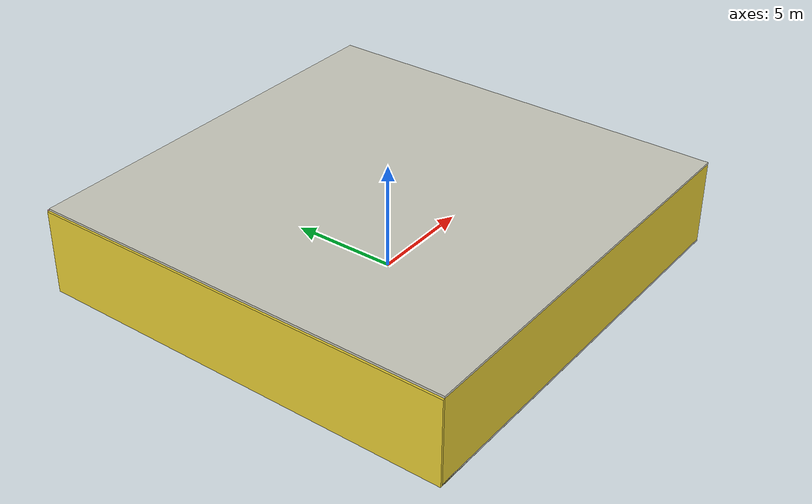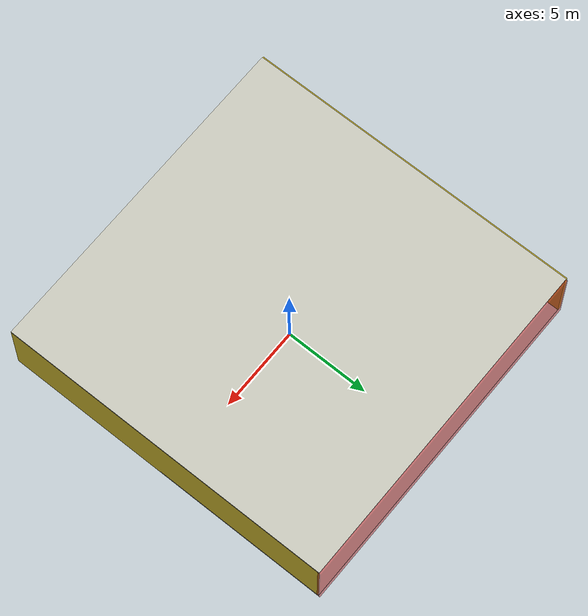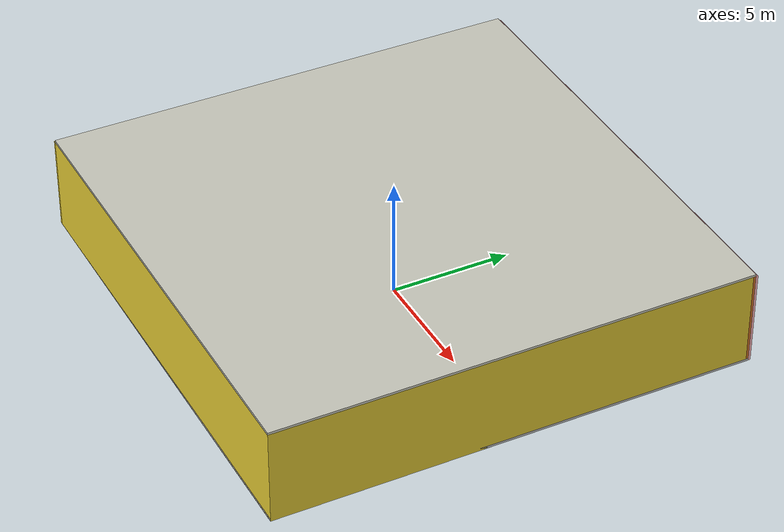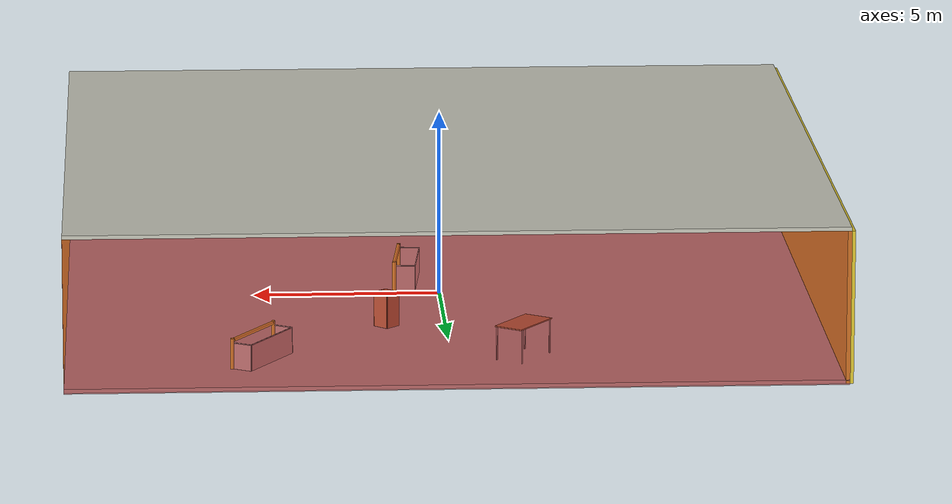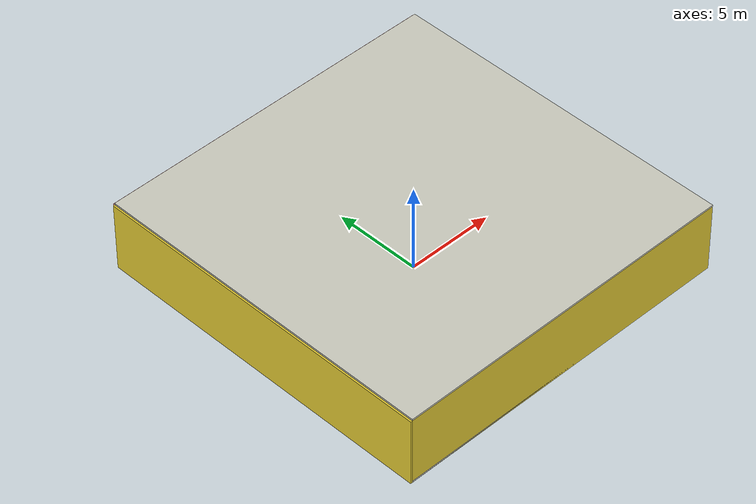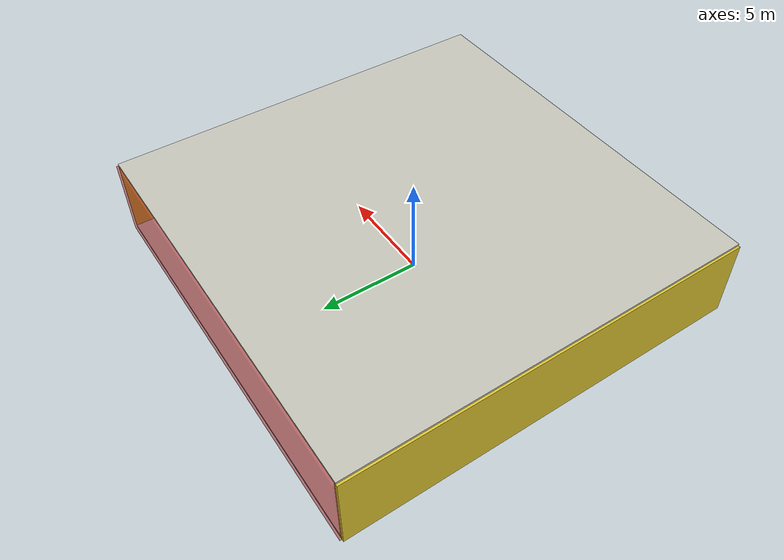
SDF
<sdf version="1.4">
 <world name="default">
  <physics type="ode">
   <max_step_size>0.001</max_step_size>
   <real_time_factor>1</real_time_factor>
   <real_time_update_rate>1000</real_time_update_rate>
   <gravity>0 0 -9.8</gravity>
  </physics>
  <scene><ambient>0.4 0.4 0.4 1</ambient><background>0.7 0.7 0.7 1</background><shadows>1</shadows></scene>
  <model name="Surrounding">
   <static>1</static>
   <link name="Ceiling">
    <collision name="Ceiling_Collision"><geometry><box><size>20 20 0.1</size></box></geometry></collision>
    <visual name="Ceiling_Visual">
     <geometry><box><size>20 20 0.1</size></box></geometry>
     <material>
      <script><uri>file://media/materials/scripts/gazebo.material</uri><name>Gazebo/PaintedWall</name></script>
     </material>
    </visual>
    <pose>0 0 4.05 0 0 0</pose>
   </link>
   <link name="Wall_South">
    <collision name="Wall_South_Collision">
     <geometry><box><size>20 0 4</size></box></geometry>
     <pose>0 0 2 0 -0 0</pose>
    </collision>
    <visual name="Wall_South_Visual">
     <pose>0 0 2 0 -0 0</pose>
     <geometry><box><size>20 0 4</size></box></geometry>
     <material>
      <script><uri>file://media/materials/scripts/gazebo.material</uri><name>Gazebo/ZincYellow</name></script>
     </material>
    </visual>
    <velocity_decay><linear>0</linear><angular>0</angular></velocity_decay>
    <pose>0 -10 0 0 -0 0</pose>
   </link>
   <link name="Wall_East">
    <collision name="Wall_21_Collision">
     <geometry><box><size>20 0 4</size></box></geometry>
     <pose>0 0 2 0 -0 0</pose>
    </collision>
    <visual name="Wall_21_Visual">
     <pose>0 0 2 0 -0 0</pose>
     <geometry><box><size>20 0 4</size></box></geometry>
     <material>
      <script><uri>file://media/materials/scripts/gazebo.material</uri><name>Gazebo/ZincYellow</name></script>
     </material>
    </visual>
    <velocity_decay><linear>0</linear><angular>0</angular></velocity_decay>
    <pose>10 0 0 0 -0 1.5708</pose>
   </link>
   <link name="Wall_North">
    <collision name="Wall_22_Collision">
     <geometry><box><size>20 0.2 4</size></box></geometry>
     <pose>0 0 2 0 -0 0</pose>
    </collision>
    <visual name="Wall_22_Visual">
     <pose>0 0 2 0 -0 0</pose>
     <geometry><box><size>20 0.2 4</size></box></geometry>
     <material>
      <script><uri>file://media/materials/scripts/gazebo.material</uri><name>Gazebo/RedTransparent</name></script>
     </material>
    </visual>
    <velocity_decay><linear>0</linear><angular>0</angular></velocity_decay>
    <pose>0 10 0 0 -0 0</pose>
   </link>
   <link name="Wall_West">
    <collision name="Wall_23_Collision">
     <geometry><box><size>20 0.2 4</size></box></geometry>
     <pose>0 0 2 0 -0 0</pose>
    </collision>
    <visual name="Wall_23_Visual">
     <pose>0 0 2 0 -0 0</pose>
     <geometry><box><size>20 0.2 4</size></box></geometry>
     <material>
      <script><uri>file://media/materials/scripts/gazebo.material</uri><name>Gazebo/ZincYellow</name></script>
     </material>
    </visual>
    <velocity_decay><linear>0</linear><angular>0</angular></velocity_decay>
    <pose>-10 0 0 0 0 -1.5708</pose>
   </link>
   <link name="Ground_link">
    <collision name="collision">
     <pose>0 0 .05 0 -0 0</pose>
     <geometry><box><size>20 20 0.1</size></box></geometry>
    </collision>
    <visual name="visual">
     <pose>0 0 .05 0 -0 0</pose>
     <geometry><box><size>20 20 0.1</size></box></geometry>
     <material>
      <script><uri>file://media/materials/scripts/gazebo.material</uri><name>Gazebo/PioneerBody</name></script>
     </material>
    </visual>
   </link>
   <static>1</static>
  </model>
  <spherical_coordinates>
   <surface_model>EARTH_WGS84</surface_model>
   <latitude_deg>0</latitude_deg>
   <longitude_deg>0</longitude_deg>
   <elevation>0</elevation>
   <heading_deg>0</heading_deg>
  </spherical_coordinates>
  <light name="lightball_0" type="diffuse">
   <diffuse>0.8 0.8 0.8 1</diffuse>
   <specular>0.2 0.2 0.2 1</specular>
   <attenuation>
    <range>100</range>
    <constant>0.7</constant>
    <linear>0.01</linear>
    <quadratic>0.001</quadratic>
   </attenuation>
   <direction>-0.5 0.1 -0.9</direction>
   <pose>-1.38589244207 -5.29075070008 0.664841726637 0 0 0</pose>
  </light>
  <light name="lightball_1" type="diffuse">
   <diffuse>0.8 0.8 0.8 1</diffuse>
   <specular>0.2 0.2 0.2 1</specular>
   <attenuation>
    <range>100</range>
    <constant>0.7</constant>
    <linear>0.01</linear>
    <quadratic>0.001</quadratic>
   </attenuation>
   <direction>-0.5 0.1 -0.9</direction>
   <pose>4.38564549392 -4.90949134511 3.53991983223 0 0 0</pose>
  </light>
  <light name="lightball_2" type="diffuse">
   <diffuse>0.8 0.8 0.8 1</diffuse>
   <specular>0.2 0.2 0.2 1</specular>
   <attenuation>
    <range>100</range>
    <constant>0.7</constant>
    <linear>0.01</linear>
    <quadratic>0.001</quadratic>
   </attenuation>
   <direction>-0.5 0.1 -0.9</direction>
   <pose>3.90767264208 -0.85346672058 1.15426356735 0 0 0</pose>
  </light>
  <light name="lightball_3" type="diffuse">
   <diffuse>0.8 0.8 0.8 1</diffuse>
   <specular>0.2 0.2 0.2 1</specular>
   <attenuation>
    <range>100</range>
    <constant>0.7</constant>
    <linear>0.01</linear>
    <quadratic>0.001</quadratic>
   </attenuation>
   <direction>-0.5 0.1 -0.9</direction>
   <pose>-4.78036632726 -8.43159622101 0.569147828802 0 0 0</pose>
  </light>
  <light name="lightball_4" type="diffuse">
   <diffuse>0.8 0.8 0.8 1</diffuse>
   <specular>0.2 0.2 0.2 1</specular>
   <attenuation>
    <range>100</range>
    <constant>0.7</constant>
    <linear>0.01</linear>
    <quadratic>0.001</quadratic>
   </attenuation>
   <direction>-0.5 0.1 -0.9</direction>
   <pose>-0.567708059381 1.40517964794 0.937989791228 0 0 0</pose>
  </light>
  <light name="lightball_5" type="diffuse">
   <diffuse>0.8 0.8 0.8 1</diffuse>
   <specular>0.2 0.2 0.2 1</specular>
   <attenuation>
    <range>100</range>
    <constant>0.7</constant>
    <linear>0.01</linear>
    <quadratic>0.001</quadratic>
   </attenuation>
   <direction>-0.5 0.1 -0.9</direction>
   <pose>-7.04474301703 5.41518038731 1.95841465524 0 0 0</pose>
  </light>
  <light name="lightball_6" type="diffuse">
   <diffuse>0.8 0.8 0.8 1</diffuse>
   <specular>0.2 0.2 0.2 1</specular>
   <attenuation>
    <range>100</range>
    <constant>0.7</constant>
    <linear>0.01</linear>
    <quadratic>0.001</quadratic>
   </attenuation>
   <direction>-0.5 0.1 -0.9</direction>
   <pose>-1.10811263757 -4.9346716581 1.41076978793 0 0 0</pose>
  </light>
  <light name="lightball_7" type="diffuse">
   <diffuse>0.8 0.8 0.8 1</diffuse>
   <specular>0.2 0.2 0.2 1</specular>
   <attenuation>
    <range>100</range>
    <constant>0.7</constant>
    <linear>0.01</linear>
    <quadratic>0.001</quadratic>
   </attenuation>
   <direction>-0.5 0.1 -0.9</direction>
   <pose>-0.784934315487 -3.70899764094 3.83954089165 0 0 0</pose>
  </light>
  <light name="lightball_8" type="diffuse">
   <diffuse>0.8 0.8 0.8 1</diffuse>
   <specular>0.2 0.2 0.2 1</specular>
   <attenuation>
    <range>100</range>
    <constant>0.7</constant>
    <linear>0.01</linear>
    <quadratic>0.001</quadratic>
   </attenuation>
   <direction>-0.5 0.1 -0.9</direction>
   <pose>-6.52987294918 7.17928279857 1.25844552434 0 0 0</pose>
  </light>
  <include><uri>model://table</uri><pose>-8.18354452238 -7.33303692113 0 0 0 0.930008719294</pose></include>
  <include><uri>model://table</uri><pose>-4.33412715104 -7.44899159033 0 0 0 1.01052699636</pose></include>
  <include><uri>model://table</uri><pose>-1.83709795724 7.20554782159 0 0 0 0.955643916108</pose></include>
  <include>
   <uri>model://robocup_3Dsim_goal</uri>
   <pose>1.10992952682 -1.01281718341 0 0 0 3.0439807574</pose>
  </include>
  <include><uri>model://cabinet</uri><pose>1.56877067168 3.83848809488 0 0 0 0.794949596728</pose></include>
  <include>
   <uri>model://robocup_3Dsim_goal</uri>
   <pose>5.1521040134 7.22488789158 0 0 0 2.59662513025</pose>
  </include>
 </world>
</sdf>

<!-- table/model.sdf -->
<sdf version="1.5">
  <model name="table">
    <static>true</static>
    <link name="link">
      <collision name="surface">
        <pose>0 0 1.0 0 0 0</pose>
        <geometry>
          <box>
            <size>1.5 0.8 0.03</size>
          </box>
        </geometry>
        <surface>
          <friction>
            <ode>
              <mu>0.6</mu>
              <mu2>0.6</mu2>
            </ode>
          </friction>
        </surface>
      </collision>
      <visual name="visual1">
        <pose>0 0 1.0 0 0 0</pose>
        <geometry>
          <box>
            <size>1.5 0.8 0.03</size>
          </box>
        </geometry>
        <material>
          <script>
            <uri>model://media/materials/scripts/gazebo.material</uri>
            <name>Gazebo/Wood</name>
          </script>
        </material>
      </visual>
      <collision name="front_left_leg">
        <pose>0.68 0.38 0.5 0 0 0</pose>
        <geometry>
          <cylinder>
            <radius>0.02</radius>
            <length>1.0</length>
          </cylinder>
        </geometry>
      </collision>
      <visual name="front_left_leg">
        <pose>0.68 0.38 0.5 0 0 0</pose>
        <geometry>
          <cylinder>
            <radius>0.02</radius>
            <length>1.0</length>
          </cylinder>
        </geometry>
        <material>
          <script>
            <uri>model://media/materials/scripts/gazebo.material</uri>
            <name>Gazebo/Grey</name>
          </script>
        </material>
      </visual>
      <collision name="front_right_leg">
        <pose>0.68 -0.38 0.5 0 0 0</pose>
        <geometry>
          <cylinder>
            <radius>0.02</radius>
            <length>1.0</length>
          </cylinder>
        </geometry>
      </collision>
      <visual name="front_right_leg">
        <pose>0.68 -0.38 0.5 0 0 0</pose>
        <geometry>
          <cylinder>
            <radius>0.02</radius>
            <length>1.0</length>
          </cylinder>
        </geometry>
        <material>
          <script>
            <uri>model://media/materials/scripts/gazebo.material</uri>
            <name>Gazebo/Grey</name>
          </script>
        </material>
      </visual>
      <collision name="back_right_leg">
        <pose>-0.68 -0.38 0.5 0 0 0</pose>
        <geometry>
          <cylinder>
            <radius>0.02</radius>
            <length>1.0</length>
          </cylinder>
        </geometry>
      </collision>
      <visual name="back_right_leg">
        <pose>-0.68 -0.38 0.5 0 0 0</pose>
        <geometry>
          <cylinder>
            <radius>0.02</radius>
            <length>1.0</length>
          </cylinder>
        </geometry>
        <material>
          <script>
            <uri>model://media/materials/scripts/gazebo.material</uri>
            <name>Gazebo/Grey</name>
          </script>
        </material>
      </visual>
      <collision name="back_left_leg">
        <pose>-0.68 0.38 0.5 0 0 0</pose>
        <geometry>
          <cylinder>
            <radius>0.02</radius>
            <length>1.0</length>
          </cylinder>
        </geometry>
      </collision>
      <visual name="back_left_leg">
        <pose>-0.68 0.38 0.5 0 0 0</pose>
        <geometry>
          <cylinder>
            <radius>0.02</radius>
            <length>1.0</length>
          </cylinder>
        </geometry>
        <material>
          <script>
            <uri>model://media/materials/scripts/gazebo.material</uri>
            <name>Gazebo/Grey</name>
          </script>
        </material>
      </visual>
    </link>
  </model>
</sdf>

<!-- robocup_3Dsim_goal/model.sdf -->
<sdf version="1.5">
  <model name="robocup_3d_goal">
    <static>true</static>
    <link name="left_post">
      <pose>0 1.05 0.45 0 0 0</pose>
      <collision name="collision">
        <geometry>
          <cylinder>
            <radius>0.05</radius>
            <length>0.9</length>
          </cylinder>
        </geometry>
      </collision>
      <visual name="visual">
        <geometry>
          <cylinder>
            <radius>0.05</radius>
            <length>0.9</length>
          </cylinder>
        </geometry>
        <material>
          <script>
            <uri>file://media/materials/scripts/gazebo.material</uri>
            <name>Gazebo/ZincYellow</name>
          </script>
        </material>
      </visual>
    </link>
    <link name="left_support_horiz_lower">
      <pose>0.30 1.05 0.01 0 0 0</pose>
      <collision name="collision">
        <geometry>
          <box>
            <size>0.50 0.02 0.02</size>
          </box>
        </geometry>
      </collision>
      <visual name="visual">
        <geometry>
          <box>
            <size>0.50 0.02 0.02</size>
          </box>
        </geometry>
        <material>
          <script>
            <uri>file://media/materials/scripts/gazebo.material</uri>
            <name>Gazebo/White</name>
          </script>
        </material>
      </visual>
    </link>
    <link name="left_support_horiz_upper">
      <pose>0.30 1.05 0.79 0 0 0</pose>
      <collision name="collision">
        <geometry>
          <box>
            <size>0.50 0.02 0.02</size>
          </box>
        </geometry>
      </collision>
      <visual name="visual">
        <geometry>
          <box>
            <size>0.50 0.02 0.02</size>
          </box>
        </geometry>
        <material>
          <script>
            <uri>file://media/materials/scripts/gazebo.material</uri>
            <name>Gazebo/White</name>
          </script>
        </material>
      </visual>
    </link>
    <link name="left_support_vertical">
      <pose>0.56 1.05 0.4 0 1.5708 0</pose>
      <collision name="collision">
        <geometry>
          <box>
            <size>0.80 0.02 0.02</size>
          </box>
        </geometry>
      </collision>
      <visual name="visual">
        <geometry>
          <box>
            <size>0.80 0.02 0.02</size>
          </box>
        </geometry>
        <material>
          <script>
            <uri>file://media/materials/scripts/gazebo.material</uri>
            <name>Gazebo/White</name>
          </script>
        </material>
      </visual>
    </link>
    <link name="right_support_horiz_lower">
      <pose>0.30 -1.05 0.01 0 0 0</pose>
      <collision name="collision">
        <geometry>
          <box>
            <size>0.50 0.02 0.02</size>
          </box>
        </geometry>
      </collision>
      <visual name="visual">
        <geometry>
          <box>
            <size>0.50 0.02 0.02</size>
          </box>
        </geometry>
        <material>
          <script>
            <uri>file://media/materials/scripts/gazebo.material</uri>
            <name>Gazebo/White</name>
          </script>
        </material>
      </visual>
    </link>
    <link name="right_support_horiz_upper">
      <pose>0.30 -1.05 0.79 0 0 0</pose>
      <collision name="collision">
        <geometry>
          <box>
            <size>0.50 0.02 0.02</size>
          </box>
        </geometry>
      </collision>
      <visual name="visual">
        <geometry>
          <box>
            <size>0.50 0.02 0.02</size>
          </box>
        </geometry>
        <material>
          <script>
            <uri>file://media/materials/scripts/gazebo.material</uri>
            <name>Gazebo/White</name>
          </script>
        </material>
      </visual>
    </link>
    <link name="right_support_vertical">
      <pose>0.56 -1.05 0.4 0 1.5708 0</pose>
      <collision name="collision">
        <geometry>
          <box>
            <size>0.80 0.02 0.02</size>
          </box>
        </geometry>
      </collision>
      <visual name="visual">
        <geometry>
          <box>
            <size>0.80 0.02 0.02</size>
          </box>
        </geometry>
        <material>
          <script>
            <uri>file://media/materials/scripts/gazebo.material</uri>
            <name>Gazebo/White</name>
          </script>
        </material>
      </visual>
    </link>
    <link name="center_support_horiz_lower">
      <pose>0.56 0 0.01 0 1.5708 0</pose>
      <collision name="collision">
        <geometry>
          <box>
            <size>0.02 2.08 0.02</size>
          </box>
        </geometry>
      </collision>
      <visual name="visual">
        <geometry>
          <box>
            <size>0.02 2.08 0.02</size>
          </box>
        </geometry>
        <material>
          <script>
            <uri>file://media/materials/scripts/gazebo.material</uri>
            <name>Gazebo/White</name>
          </script>
        </material>
      </visual>
    </link>
    <link name="center_support_horiz_upper">
      <pose>0.56 0 0.79 0 1.5708 0</pose>
      <collision name="collision">
        <geometry>
          <box>
            <size>0.02 2.08 0.02</size>
          </box>
        </geometry>
      </collision>
      <visual name="visual">
        <geometry>
          <box>
            <size>0.02 2.08 0.02</size>
          </box>
        </geometry>
        <material>
          <script>
            <uri>file://media/materials/scripts/gazebo.material</uri>
            <name>Gazebo/White</name>
          </script>
        </material>
      </visual>
    </link>
    <link name="right_post">
      <pose>0 -1.05 0.45 0 0 0</pose>
      <collision name="collision">
        <geometry>
          <cylinder>
            <radius>0.05</radius>
            <length>0.9</length>
          </cylinder>
        </geometry>
      </collision>
      <visual name="visual">
        <geometry>
          <cylinder>
            <radius>0.05</radius>
            <length>0.9</length>
          </cylinder>
        </geometry>
        <material>
          <script>
            <uri>file://media/materials/scripts/gazebo.material</uri>
            <name>Gazebo/ZincYellow</name>
          </script>
        </material>
      </visual>
    </link>
    <link name="crossbar">
      <pose>0 0 0.85 1.57 1.57 0</pose>
      <collision name="collision">
        <geometry>
          <cylinder>
            <radius>0.05</radius>
            <length>2.0</length>
          </cylinder>
        </geometry>
      </collision>
      <visual name="visual">
        <geometry>
          <cylinder>
            <radius>0.05</radius>
            <length>2.0</length>
          </cylinder>
        </geometry>
        <material>
          <script>
            <uri>file://media/materials/scripts/gazebo.material</uri>
            <name>Gazebo/ZincYellow</name>
          </script>
        </material>
      </visual>
    </link>
    <link name="center_net">
      <pose>0.56 0 0.40 0 0 0</pose>
      <collision name="collision">
        <geometry>
          <box>
            <size>0.01 2.1 0.80</size>
          </box>
        </geometry>
      </collision>
      <visual name="visual">
        <geometry>
          <box>
            <size>0.01 2.1 0.80</size>
          </box>
        </geometry>
        <material>
          <script>
            <uri>model://../model_source/models/robocup09_spl_field/materials/scripts/</uri>
            <uri>model://../model_source/models/robocup09_spl_field/materials/textures/</uri>
            <name>RoboCup/Net</name>
          </script>
        </material>
      </visual>
    </link>
    <link name="left_net">
      <pose>0.30 1.05 0.40 0 0 0</pose>
      <collision name="collision">
        <geometry>
          <box>
            <size>0.50 0.01 0.76</size>
          </box>
        </geometry>
      </collision>
      <visual name="visual">
        <geometry>
          <box>
            <size>0.50 0.01 0.76</size>
          </box>
        </geometry>
        <material>
          <script>
            <uri>model://../model_source/models/robocup09_spl_field/materials/scripts/</uri>
            <uri>model://../model_source/models/robocup09_spl_field/materials/textures/</uri>
            <name>RoboCup/Net</name>
          </script>
        </material>
      </visual>
    </link>
    <link name="right_net">
      <pose>0.30 -1.05 0.40 0 0 0</pose>
      <collision name="collision">
        <geometry>
          <box>
            <size>0.50 0.01 0.76</size>
          </box>
        </geometry>
      </collision>
      <visual name="visual">
        <geometry>
          <box>
            <size>0.50 0.01 0.76</size>
          </box>
        </geometry>
        <material>
          <script>
            <uri>model://../model_source/models/robocup09_spl_field/materials/scripts/</uri>
            <uri>model://../model_source/models/robocup09_spl_field/materials/textures/</uri>
            <name>RoboCup/Net</name>
          </script>
        </material>
      </visual>
    </link>
  </model>
</sdf>

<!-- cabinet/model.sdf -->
<sdf version="1.5">
  <model name="cabinet">
    <static>true</static>
    <link name="cabinet_bottom_plate">
      <inertial>
        <pose>0 0 -1 0 0 0</pose>
        <inertia>
          <ixx>2.050000</ixx>
          <ixy>0</ixy>
          <ixz>0</ixz>
          <iyy>2.050000</iyy>
          <iyz>0</iyz>
          <izz>2.050000</izz>
        </inertia>
        <mass>25.000000</mass>
      </inertial>
      <collision name="cabinet_bottom_plate_geom">
        <pose>0 0 0.010000 0 0 0</pose>
        <geometry>
          <box>
            <size>0.450000 0.450000 0.020000</size>
          </box>
        </geometry>
      </collision>
      <visual name="cabinet_bottom_plate_geom_visual">
        <pose>0 0 0.010000 0 0 0</pose>
        <geometry>
          <box>
            <size>0.450000 0.450000 0.020000</size>
          </box>
        </geometry>
        <material>
          <script>
            <uri>model://media/materials/scripts/gazebo.material</uri>
            <name>Gazebo/Wood</name>
          </script>
        </material>
      </visual>
      <collision name="cabinet_bottom_plate_geom_cabinet_back_plate">
        <pose>0.235000 0 0.510000 0 0 0</pose>
        <geometry>
          <box>
            <size>0.020000 0.450000 1.020000</size>
          </box>
        </geometry>
      </collision>
      <visual name="cabinet_bottom_plate_geom_cabinet_back_plate_visual">
        <pose>0.235000 0 0.510000 0 0 0</pose>
        <geometry>
          <box>
            <size>0.020000 0.450000 1.020000</size>
          </box>
        </geometry>
        <material>
          <script>
            <uri>model://media/materials/scripts/gazebo.material</uri>
            <name>Gazebo/Wood</name>
          </script>
        </material>
      </visual>
      <collision name="cabinet_bottom_plate_geom_cabinet_left_plate">
        <pose>0 0.235000 0.510000 0 0 0</pose>
        <geometry>
          <box>
            <size>0.450000 0.020000 1.020000</size>
          </box>
        </geometry>
      </collision>
      <visual name="cabinet_bottom_plate_geom_cabinet_left_plate_visual">
        <pose>0 0.235000 0.510000 0 0 0</pose>
        <geometry>
          <box>
            <size>0.450000 0.020000 1.020000</size>
          </box>
        </geometry>
        <material>
          <script>
            <uri>model://media/materials/scripts/gazebo.material</uri>
            <name>Gazebo/Wood</name>
          </script>
        </material>
      </visual>
      <collision name="cabinet_bottom_plate_geom_cabinet_middle_plate">
        <pose>0 0 0.510000 0 0 0</pose>
        <geometry>
          <box>
            <size>0.450000 0.450000 0.020000</size>
          </box>
        </geometry>
      </collision>
      <visual name="cabinet_bottom_plate_geom_cabinet_middle_plate_visual">
        <pose>0 0 0.510000 0 0 0</pose>
        <geometry>
          <box>
            <size>0.450000 0.450000 0.020000</size>
          </box>
        </geometry>
        <material>
          <script>
            <uri>model://media/materials/scripts/gazebo.material</uri>
            <name>Gazebo/Wood</name>
          </script>
        </material>
      </visual>
      <collision name="cabinet_bottom_plate_geom_cabinet_right_plate">
        <pose>0 -0.235000 0.510000 0 0 0</pose>
        <geometry>
          <box>
            <size>0.450000 0.020000 1.020000</size>
          </box>
        </geometry>
      </collision>
      <visual name="cabinet_bottom_plate_geom_cabinet_right_plate_visual">
        <pose>0 -0.235000 0.510000 0 0 0</pose>
        <geometry>
          <box>
            <size>0.450000 0.020000 1.020000</size>
          </box>
        </geometry>
        <material>
          <script>
            <uri>model://media/materials/scripts/gazebo.material</uri>
            <name>Gazebo/Wood</name>
          </script>
        </material>
      </visual>
      <collision name="cabinet_bottom_plate_geom_cabinet_top_plate">
        <pose>0 0 1.010000 0 0 0</pose>
        <geometry>
          <box>
            <size>0.450000 0.450000 0.020000</size>
          </box>
        </geometry>
      </collision>
      <visual name="cabinet_bottom_plate_geom_cabinet_top_plate_visual">
        <pose>0 0 1.010000 0 0 0</pose>
        <geometry>
          <box>
            <size>0.450000 0.450000 0.020000</size>
          </box>
        </geometry>
        <material>
          <script>
            <uri>model://media/materials/scripts/gazebo.material</uri>
            <name>Gazebo/Wood</name>
          </script>
        </material>
      </visual>
    </link>
  </model>
</sdf>
